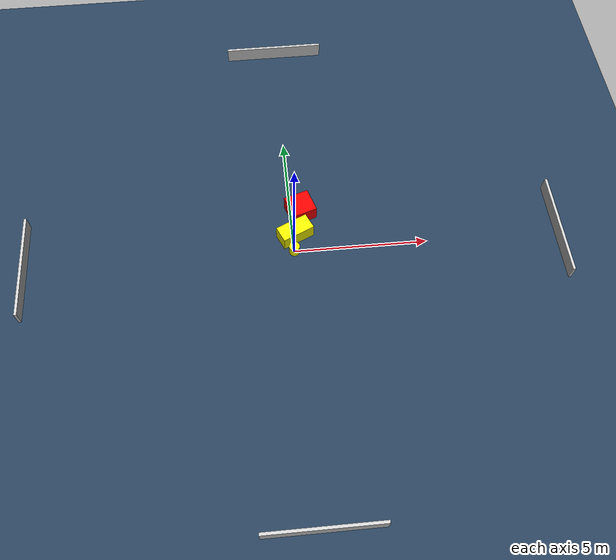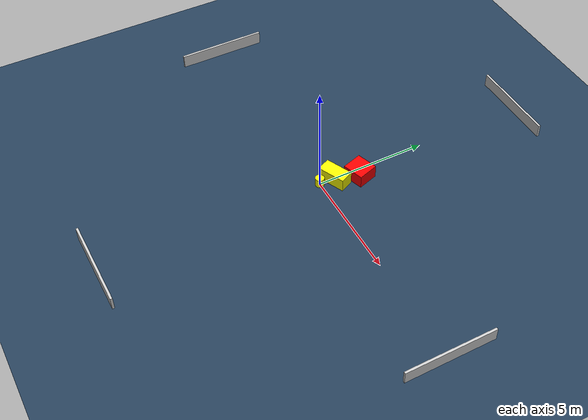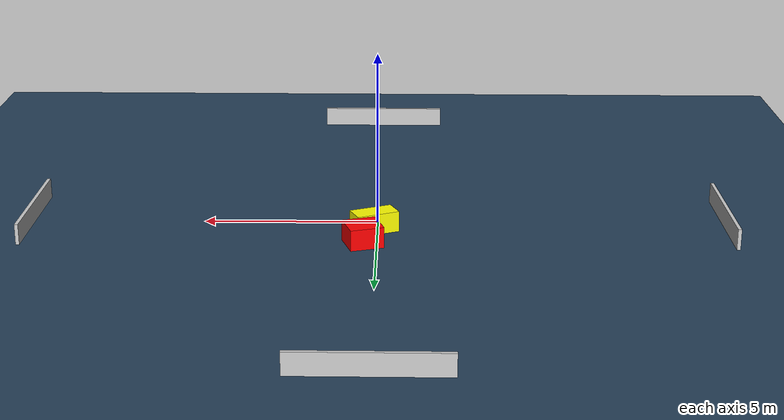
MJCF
<?xml version="1.0" ?>
<mujoco model="generated_environment">
  <option timestep="0.01" integrator="RK4" cone="elliptic"/>
  <default>
    <geom density="1"/>
  </default>
  <asset>
    <texture builtin="gradient" height="3072" name="skybox" rgb1="0.3 0.5 0.7" rgb2="0 0 0" type="skybox" width="512"/>
    <texture builtin="checker" height="300" name="groundplane" rgb1="0.2 0.3 0.4" rgb2="0.1 0.2 0.3" type="2d" width="300"/>
    <material name="groundplane" reflectance="0.2" texrepeat="5 5" texture="groundplane"/>
  </asset>
  <worldbody>
    <light dir="0 0 -1" directional="true" pos="0 0 1.5"/>
    <geom condim="3" friction="0.5 0.005 0.001" material="groundplane" name="floor" pos="0 0 0" size="0 0 0.05" type="plane"/>
    <body name="walls">
      <geom name="wall_1" condim="4" pos="-10.0 0.0 0.3" rgba="0.800000011920929 0.800000011920929 0.800000011920929 1.0" size="0.05 2.0 0.3" type="box"/>
      <geom name="wall_2" condim="4" pos="10.0 0.0 0.3" rgba="0.800000011920929 0.800000011920929 0.800000011920929 1.0" size="0.05 2.0 0.3" type="box"/>
      <geom name="wall_3" condim="4" pos="0.0 -10.0 0.3" rgba="0.800000011920929 0.800000011920929 0.800000011920929 1.0" size="2.0 0.05 0.3" type="box"/>
      <geom name="wall_4" condim="4" pos="0.0 10.0 0.3" rgba="0.800000011920929 0.800000011920929 0.800000011920929 1.0" size="2.0 0.05 0.3" type="box"/>
    </body>
    <body name="robot">
      <joint name="joint_x" type="slide" pos="0 0 0" axis="1 0 0"/>
      <joint name="joint_y" type="slide" pos="0 0 0" axis="0 1 0"/>
      <geom name="robot" type="cylinder" pos="0.0 0.0 0.2" size="0.2 0.2 0.0" mass="5.0" friction="1.0 0.005 0.0001" condim="4" rgba="1.0 1.0 0.0 1.0"/>
    </body>
    <body name="obstacle_1_movable">
      <geom name="obstacle_1_movable" condim="4" pos="0.08385751539739271 0.6890531772203243 0.3" euler="0 0 294.2349755197537" friction="0.0 0.005 0.001" rgba="1.0 1.0 0.0 1.0" size="0.3164413640630916 0.6311616760668911 0.3" type="box" mass="0.1"/>
      <joint type="free"/>
    </body>
    <body name="obstacle_2_static">
      <geom name="obstacle_2_static" condim="4" pos="0.37950540977201846 1.7408079551860305 0.3" euler="0 0 287.7027276359285" friction="0.0 0.005 0.001" rgba="1.0 0.0 0.0 1.0" size="0.461242357645019 0.4841549600574645 0.3" type="box"/>
    </body>
  </worldbody>
  <actuator>
    <motor name="actuator_x" joint="joint_x" gear="1" ctrlrange="-1 1"/>
    <motor name="actuator_y" joint="joint_y" gear="1" ctrlrange="-1 1"/>
  </actuator>
</mujoco>
